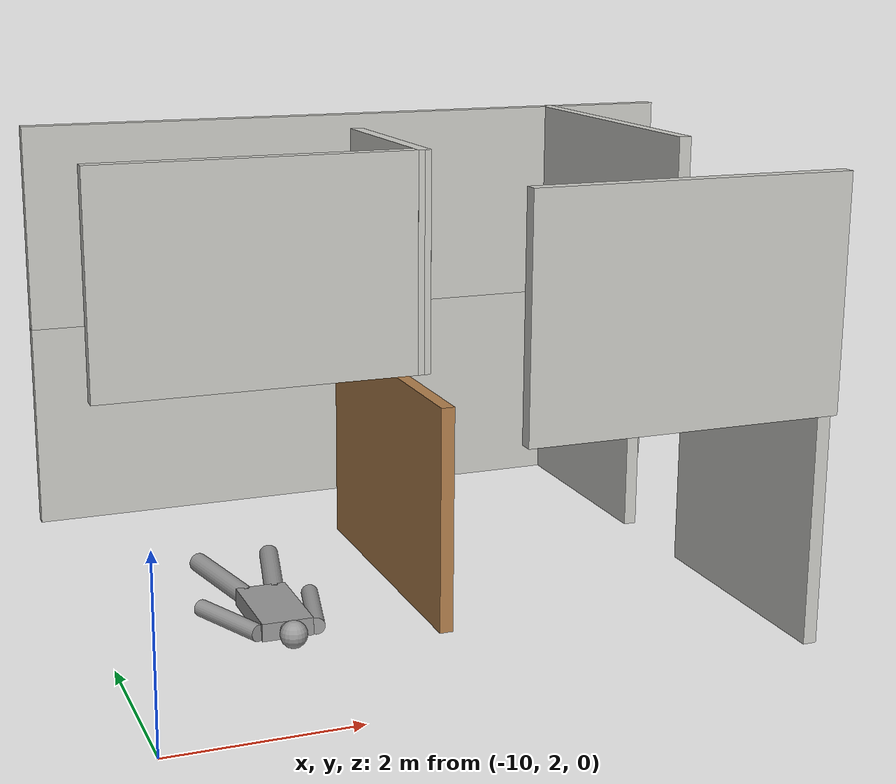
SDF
<sdf version="1.6">
 <model name="home_human">
  <link name="Wall_157">
   <pose>-8.04927 5.17259 2.5 0 -0 0</pose>
   <visual name="Wall_157_Visual">
    <pose>0 0 1.25 0 -0 0</pose>
    <geometry><box><size>3.785 0.15 2.5</size></box></geometry>
    <material>
     <script><uri>file://media/materials/scripts/gazebo.material</uri><name>Gazebo/CeilingTiled</name></script>
     <ambient>1 1 1 1</ambient>
     <shader type="pixel"/>
    </material>
    <meta><layer>1</layer></meta>
   </visual>
   <collision name="Wall_157_Collision">
    <pose>0 0 1.25 0 -0 0</pose>
    <geometry><box><size>3.785 0.15 2.5</size></box></geometry>
    <surface>
     <friction>
      <ode><mu>1</mu><mu2>1</mu2><fdir1>0 0 0</fdir1><slip1>0</slip1><slip2>0</slip2></ode>
      <torsional>
       <coefficient>1</coefficient>
       <patch_radius>0</patch_radius>
       <surface_radius>0</surface_radius>
       <use_patch_radius>1</use_patch_radius>
       <ode><slip>0</slip></ode>
      </torsional>
     </friction>
     <bounce><restitution_coefficient>0</restitution_coefficient><threshold>1e+06</threshold></bounce>
     <contact>
      <collide_without_contact>0</collide_without_contact>
      <collide_without_contact_bitmask>1</collide_without_contact_bitmask>
      <collide_bitmask>1</collide_bitmask>
      <ode>
       <soft_cfm>0</soft_cfm>
       <soft_erp>0.2</soft_erp>
       <kp>1e+13</kp>
       <kd>1</kd>
       <max_vel>0.01</max_vel>
       <min_depth>0</min_depth>
      </ode>
      <bullet>
       <split_impulse>1</split_impulse>
       <split_impulse_penetration_threshold>-0.01</split_impulse_penetration_threshold>
       <soft_cfm>0</soft_cfm>
       <soft_erp>0.2</soft_erp>
       <kp>1e+13</kp>
       <kd>1</kd>
      </bullet>
     </contact>
    </surface>
   </collision>
  </link>
  <link name="Wall_158">
   <pose>-6.24927 6.18759 2.5 0 -0 1.58804</pose>
   <visual name="Wall_158_Visual">
    <pose>0 0 1.25 0 -0 0</pose>
    <geometry><box><size>2.1803 0.15 2.5</size></box></geometry>
    <material>
     <script><uri>file://media/materials/scripts/gazebo.material</uri><name>Gazebo/CeilingTiled</name></script>
     <ambient>1 1 1 1</ambient>
     <shader type="pixel"/>
    </material>
    <meta><layer>1</layer></meta>
   </visual>
   <collision name="Wall_158_Collision">
    <pose>0 0 1.25 0 -0 0</pose>
    <geometry><box><size>2.1803 0.15 2.5</size></box></geometry>
    <surface>
     <friction>
      <ode><mu>1</mu><mu2>1</mu2><fdir1>0 0 0</fdir1><slip1>0</slip1><slip2>0</slip2></ode>
      <torsional>
       <coefficient>1</coefficient>
       <patch_radius>0</patch_radius>
       <surface_radius>0</surface_radius>
       <use_patch_radius>1</use_patch_radius>
       <ode><slip>0</slip></ode>
      </torsional>
     </friction>
     <bounce><restitution_coefficient>0</restitution_coefficient><threshold>1e+06</threshold></bounce>
     <contact>
      <collide_without_contact>0</collide_without_contact>
      <collide_without_contact_bitmask>1</collide_without_contact_bitmask>
      <collide_bitmask>1</collide_bitmask>
      <ode>
       <soft_cfm>0</soft_cfm>
       <soft_erp>0.2</soft_erp>
       <kp>1e+13</kp>
       <kd>1</kd>
       <max_vel>0.01</max_vel>
       <min_depth>0</min_depth>
      </ode>
      <bullet>
       <split_impulse>1</split_impulse>
       <split_impulse_penetration_threshold>-0.01</split_impulse_penetration_threshold>
       <soft_cfm>0</soft_cfm>
       <soft_erp>0.2</soft_erp>
       <kp>1e+13</kp>
       <kd>1</kd>
      </bullet>
     </contact>
    </surface>
   </collision>
  </link>
  <link name="Wall_160">
   <pose>-6.48077 5.50859 0 0 0 -1.5708</pose>
   <visual name="Wall_160_Visual">
    <pose>0 0 1.25 0 -0 0</pose>
    <geometry><box><size>3.5 0.15 2.5</size></box></geometry>
    <material>
     <script><uri>file://media/materials/scripts/gazebo.material</uri><name>Gazebo/Wood</name></script>
     <ambient>1 1 1 1</ambient>
     <shader type="pixel"/>
    </material>
    <meta><layer>0</layer></meta>
   </visual>
   <collision name="Wall_160_Collision">
    <pose>0 0 1.25 0 -0 0</pose>
    <geometry><box><size>3.5 0.15 2.5</size></box></geometry>
    <surface>
     <friction>
      <ode><mu>1</mu><mu2>1</mu2><fdir1>0 0 0</fdir1><slip1>0</slip1><slip2>0</slip2></ode>
      <torsional>
       <coefficient>1</coefficient>
       <patch_radius>0</patch_radius>
       <surface_radius>0</surface_radius>
       <use_patch_radius>1</use_patch_radius>
       <ode><slip>0</slip></ode>
      </torsional>
     </friction>
     <bounce><restitution_coefficient>0</restitution_coefficient><threshold>1e+06</threshold></bounce>
     <contact>
      <collide_without_contact>0</collide_without_contact>
      <collide_without_contact_bitmask>1</collide_without_contact_bitmask>
      <collide_bitmask>1</collide_bitmask>
      <ode>
       <soft_cfm>0</soft_cfm>
       <soft_erp>0.2</soft_erp>
       <kp>1e+13</kp>
       <kd>1</kd>
       <max_vel>0.01</max_vel>
       <min_depth>0</min_depth>
      </ode>
      <bullet>
       <split_impulse>1</split_impulse>
       <split_impulse_penetration_threshold>-0.01</split_impulse_penetration_threshold>
       <soft_cfm>0</soft_cfm>
       <soft_erp>0.2</soft_erp>
       <kp>1e+13</kp>
       <kd>1</kd>
      </bullet>
     </contact>
    </surface>
   </collision>
  </link>
  <link name="Wall_19">
   <pose>-5.74677 8.86009 0 0 0 -3.13884</pose>
   <visual name="Wall_19_Visual">
    <pose>0 0 1.25 0 -0 0</pose>
    <geometry><box><size>8.5 0.15 2.5</size></box></geometry>
    <material>
     <script><uri>file://media/materials/scripts/gazebo.material</uri><name>Gazebo/CeilingTiled</name></script>
     <ambient>1 1 1 1</ambient>
     <shader type="pixel"/>
    </material>
    <meta><layer>0</layer></meta>
   </visual>
   <collision name="Wall_19_Collision">
    <pose>0 0 1.25 0 -0 0</pose>
    <geometry><box><size>8.5 0.15 2.5</size></box></geometry>
    <surface>
     <friction>
      <ode><mu>1</mu><mu2>1</mu2><fdir1>0 0 0</fdir1><slip1>0</slip1><slip2>0</slip2></ode>
      <torsional>
       <coefficient>1</coefficient>
       <patch_radius>0</patch_radius>
       <surface_radius>0</surface_radius>
       <use_patch_radius>1</use_patch_radius>
       <ode><slip>0</slip></ode>
      </torsional>
     </friction>
     <bounce><restitution_coefficient>0</restitution_coefficient><threshold>1e+06</threshold></bounce>
     <contact>
      <collide_without_contact>0</collide_without_contact>
      <collide_without_contact_bitmask>1</collide_without_contact_bitmask>
      <collide_bitmask>1</collide_bitmask>
      <ode>
       <soft_cfm>0</soft_cfm>
       <soft_erp>0.2</soft_erp>
       <kp>1e+13</kp>
       <kd>1</kd>
       <max_vel>0.01</max_vel>
       <min_depth>0</min_depth>
      </ode>
      <bullet>
       <split_impulse>1</split_impulse>
       <split_impulse_penetration_threshold>-0.01</split_impulse_penetration_threshold>
       <soft_cfm>0</soft_cfm>
       <soft_erp>0.2</soft_erp>
       <kp>1e+13</kp>
       <kd>1</kd>
      </bullet>
     </contact>
    </surface>
   </collision>
  </link>
  <link name="Wall_41">
   <pose>-3.01277 7.55459 0 0 0 -1.5708</pose>
   <visual name="Wall_41_Visual">
    <pose>0 0 1.25 0 -0 0</pose>
    <geometry><box><size>2.75 0.15 2.5</size></box></geometry>
    <material>
     <script><uri>file://media/materials/scripts/gazebo.material</uri><name>Gazebo/CeilingTiled</name></script>
     <ambient>1 1 1 1</ambient>
     <shader type="pixel"/>
    </material>
    <meta><layer>0</layer></meta>
   </visual>
   <collision name="Wall_41_Collision">
    <pose>0 0 1.25 0 -0 0</pose>
    <geometry><box><size>2.75 0.15 2.5</size></box></geometry>
    <surface>
     <friction>
      <ode><mu>1</mu><mu2>1</mu2><fdir1>0 0 0</fdir1><slip1>0</slip1><slip2>0</slip2></ode>
      <torsional>
       <coefficient>1</coefficient>
       <patch_radius>0</patch_radius>
       <surface_radius>0</surface_radius>
       <use_patch_radius>1</use_patch_radius>
       <ode><slip>0</slip></ode>
      </torsional>
     </friction>
     <bounce><restitution_coefficient>0</restitution_coefficient><threshold>1e+06</threshold></bounce>
     <contact>
      <collide_without_contact>0</collide_without_contact>
      <collide_without_contact_bitmask>1</collide_without_contact_bitmask>
      <collide_bitmask>1</collide_bitmask>
      <ode>
       <soft_cfm>0</soft_cfm>
       <soft_erp>0.2</soft_erp>
       <kp>1e+13</kp>
       <kd>1</kd>
       <max_vel>0.01</max_vel>
       <min_depth>0</min_depth>
      </ode>
      <bullet>
       <split_impulse>1</split_impulse>
       <split_impulse_penetration_threshold>-0.01</split_impulse_penetration_threshold>
       <soft_cfm>0</soft_cfm>
       <soft_erp>0.2</soft_erp>
       <kp>1e+13</kp>
       <kd>1</kd>
      </bullet>
     </contact>
    </surface>
   </collision>
  </link>
  <link name="Wall_43">
   <pose>-2.99277 3.55759 0 0 -0 1.5708</pose>
   <visual name="Wall_43_Visual">
    <pose>0 0 1.25 0 -0 0</pose>
    <geometry><box><size>2.75 0.15 2.5</size></box></geometry>
    <material>
     <script><uri>file://media/materials/scripts/gazebo.material</uri><name>Gazebo/CeilingTiled</name></script>
     <ambient>1 1 1 1</ambient>
     <shader type="pixel"/>
    </material>
    <meta><layer>0</layer></meta>
   </visual>
   <collision name="Wall_43_Collision">
    <pose>0 0 1.25 0 -0 0</pose>
    <geometry><box><size>2.75 0.15 2.5</size></box></geometry>
    <surface>
     <friction>
      <ode><mu>1</mu><mu2>1</mu2><fdir1>0 0 0</fdir1><slip1>0</slip1><slip2>0</slip2></ode>
      <torsional>
       <coefficient>1</coefficient>
       <patch_radius>0</patch_radius>
       <surface_radius>0</surface_radius>
       <use_patch_radius>1</use_patch_radius>
       <ode><slip>0</slip></ode>
      </torsional>
     </friction>
     <bounce><restitution_coefficient>0</restitution_coefficient><threshold>1e+06</threshold></bounce>
     <contact>
      <collide_without_contact>0</collide_without_contact>
      <collide_without_contact_bitmask>1</collide_without_contact_bitmask>
      <collide_bitmask>1</collide_bitmask>
      <ode>
       <soft_cfm>0</soft_cfm>
       <soft_erp>0.2</soft_erp>
       <kp>1e+13</kp>
       <kd>1</kd>
       <max_vel>0.01</max_vel>
       <min_depth>0</min_depth>
      </ode>
      <bullet>
       <split_impulse>1</split_impulse>
       <split_impulse_penetration_threshold>-0.01</split_impulse_penetration_threshold>
       <soft_cfm>0</soft_cfm>
       <soft_erp>0.2</soft_erp>
       <kp>1e+13</kp>
       <kd>1</kd>
      </bullet>
     </contact>
    </surface>
   </collision>
  </link>
  <link name="Wall_61">
   <pose>-5.74677 8.86009 2.5 0 0 -3.13884</pose>
   <visual name="Wall_61_Visual">
    <pose>0 0 1.25 0 -0 0</pose>
    <geometry><box><size>8.5 0.15 2.5</size></box></geometry>
    <material>
     <script><uri>file://media/materials/scripts/gazebo.material</uri><name>Gazebo/CeilingTiled</name></script>
     <ambient>1 1 1 1</ambient>
     <shader type="pixel"/>
    </material>
    <meta><layer>1</layer></meta>
   </visual>
   <collision name="Wall_61_Collision">
    <pose>0 0 1.25 0 -0 0</pose>
    <geometry><box><size>8.5 0.15 2.5</size></box></geometry>
    <surface>
     <friction>
      <ode><mu>1</mu><mu2>1</mu2><fdir1>0 0 0</fdir1><slip1>0</slip1><slip2>0</slip2></ode>
      <torsional>
       <coefficient>1</coefficient>
       <patch_radius>0</patch_radius>
       <surface_radius>0</surface_radius>
       <use_patch_radius>1</use_patch_radius>
       <ode><slip>0</slip></ode>
      </torsional>
     </friction>
     <bounce><restitution_coefficient>0</restitution_coefficient><threshold>1e+06</threshold></bounce>
     <contact>
      <collide_without_contact>0</collide_without_contact>
      <collide_without_contact_bitmask>1</collide_without_contact_bitmask>
      <collide_bitmask>1</collide_bitmask>
      <ode>
       <soft_cfm>0</soft_cfm>
       <soft_erp>0.2</soft_erp>
       <kp>1e+13</kp>
       <kd>1</kd>
       <max_vel>0.01</max_vel>
       <min_depth>0</min_depth>
      </ode>
      <bullet>
       <split_impulse>1</split_impulse>
       <split_impulse_penetration_threshold>-0.01</split_impulse_penetration_threshold>
       <soft_cfm>0</soft_cfm>
       <soft_erp>0.2</soft_erp>
       <kp>1e+13</kp>
       <kd>1</kd>
      </bullet>
     </contact>
    </surface>
   </collision>
  </link>
  <link name="Wall_72">
   <pose>-3.01277 7.05459 2.5 0 0 -1.5708</pose>
   <visual name="Wall_72_Visual">
    <pose>0 0 1.25 0 -0 0</pose>
    <geometry><box><size>3.75 0.15 2.5</size></box></geometry>
    <material>
     <script><uri>file://media/materials/scripts/gazebo.material</uri><name>Gazebo/CeilingTiled</name></script>
     <ambient>1 1 1 1</ambient>
     <shader type="pixel"/>
    </material>
    <meta><layer>1</layer></meta>
   </visual>
   <collision name="Wall_72_Collision">
    <pose>0 0 1.25 0 -0 0</pose>
    <geometry><box><size>3.75 0.15 2.5</size></box></geometry>
    <surface>
     <friction>
      <ode><mu>1</mu><mu2>1</mu2><fdir1>0 0 0</fdir1><slip1>0</slip1><slip2>0</slip2></ode>
      <torsional>
       <coefficient>1</coefficient>
       <patch_radius>0</patch_radius>
       <surface_radius>0</surface_radius>
       <use_patch_radius>1</use_patch_radius>
       <ode><slip>0</slip></ode>
      </torsional>
     </friction>
     <bounce><restitution_coefficient>0</restitution_coefficient><threshold>1e+06</threshold></bounce>
     <contact>
      <collide_without_contact>0</collide_without_contact>
      <collide_without_contact_bitmask>1</collide_without_contact_bitmask>
      <collide_bitmask>1</collide_bitmask>
      <ode>
       <soft_cfm>0</soft_cfm>
       <soft_erp>0.2</soft_erp>
       <kp>1e+13</kp>
       <kd>1</kd>
       <max_vel>0.01</max_vel>
       <min_depth>0</min_depth>
      </ode>
      <bullet>
       <split_impulse>1</split_impulse>
       <split_impulse_penetration_threshold>-0.01</split_impulse_penetration_threshold>
       <soft_cfm>0</soft_cfm>
       <soft_erp>0.2</soft_erp>
       <kp>1e+13</kp>
       <kd>1</kd>
      </bullet>
     </contact>
    </surface>
   </collision>
  </link>
  <link name="Wall_82">
   <pose>-4.58827 2.21359 2.5 0 0 -0.001826</pose>
   <visual name="Wall_82_Visual">
    <pose>0 0 1.25 0 -0 0</pose>
    <geometry><box><size>3.43455 0.15 2.5</size></box></geometry>
    <material>
     <script><uri>file://media/materials/scripts/gazebo.material</uri><name>Gazebo/CeilingTiled</name></script>
     <ambient>1 1 1 1</ambient>
     <shader type="pixel"/>
    </material>
    <meta><layer>1</layer></meta>
   </visual>
   <collision name="Wall_82_Collision">
    <pose>0 0 1.25 0 -0 0</pose>
    <geometry><box><size>3.43455 0.15 2.5</size></box></geometry>
    <surface>
     <friction>
      <ode><mu>1</mu><mu2>1</mu2><fdir1>0 0 0</fdir1><slip1>0</slip1><slip2>0</slip2></ode>
      <torsional>
       <coefficient>1</coefficient>
       <patch_radius>0</patch_radius>
       <surface_radius>0</surface_radius>
       <use_patch_radius>1</use_patch_radius>
       <ode><slip>0</slip></ode>
      </torsional>
     </friction>
     <bounce><restitution_coefficient>0</restitution_coefficient><threshold>1e+06</threshold></bounce>
     <contact>
      <collide_without_contact>0</collide_without_contact>
      <collide_without_contact_bitmask>1</collide_without_contact_bitmask>
      <collide_bitmask>1</collide_bitmask>
      <ode>
       <soft_cfm>0</soft_cfm>
       <soft_erp>0.2</soft_erp>
       <kp>1e+13</kp>
       <kd>1</kd>
       <max_vel>0.01</max_vel>
       <min_depth>0</min_depth>
      </ode>
      <bullet>
       <split_impulse>1</split_impulse>
       <split_impulse_penetration_threshold>-0.01</split_impulse_penetration_threshold>
       <soft_cfm>0</soft_cfm>
       <soft_erp>0.2</soft_erp>
       <kp>1e+13</kp>
       <kd>1</kd>
      </bullet>
     </contact>
    </surface>
   </collision>
  </link>
  <model name="human">
   <link name="link_2">
    <inertial>
     <mass>0.00274256</mass>
     <inertia>
      <ixx>6.98489e-06</ixx>
      <ixy>0</ixy>
      <ixz>0</ixz>
      <iyy>6.98489e-06</iyy>
      <iyz>0</iyz>
      <izz>9.48338e-06</izz>
     </inertia>
    </inertial>
    <pose>0.004143 -0.698236 0.01353 1.53639 -0.014642 -0.02388</pose>
    <visual name="visual">
     <geometry><cylinder><radius>0.0831608</radius><length>0.0990711</length></cylinder></geometry>
     <material>
      <lighting>1</lighting>
      <script><uri>file://media/materials/scripts/gazebo.material</uri><name>Gazebo/Grey</name></script>
      <shader type="pixel"/>
     </material>
    </visual>
    <collision name="collision">
     <geometry><cylinder><radius>0.083161</radius><length>0.099071</length></cylinder></geometry>
     <surface>
      <friction>
       <ode><mu>1</mu><mu2>1</mu2><fdir1>0 0 0</fdir1><slip1>0</slip1><slip2>0</slip2></ode>
       <torsional>
        <coefficient>1</coefficient>
        <patch_radius>0</patch_radius>
        <surface_radius>0</surface_radius>
        <use_patch_radius>1</use_patch_radius>
        <ode><slip>0</slip></ode>
       </torsional>
      </friction>
      <bounce><restitution_coefficient>0</restitution_coefficient><threshold>1e+06</threshold></bounce>
      <contact>
       <collide_without_contact>0</collide_without_contact>
       <collide_without_contact_bitmask>1</collide_without_contact_bitmask>
       <collide_bitmask>1</collide_bitmask>
       <ode>
        <soft_cfm>0</soft_cfm>
        <soft_erp>0.2</soft_erp>
        <kp>1e+13</kp>
        <kd>1</kd>
        <max_vel>0.01</max_vel>
        <min_depth>0</min_depth>
       </ode>
       <bullet>
        <split_impulse>1</split_impulse>
        <split_impulse_penetration_threshold>-0.01</split_impulse_penetration_threshold>
        <soft_cfm>0</soft_cfm>
        <soft_erp>0.2</soft_erp>
        <kp>1e+13</kp>
        <kd>1</kd>
       </bullet>
      </contact>
     </surface>
    </collision>
   </link>
   <link name="link_3">
    <inertial>
     <mass>0.0260719</mass>
     <inertia>
      <ixx>0.000229246</ixx>
      <ixy>0</ixy>
      <ixz>0</ixz>
      <iyy>0.000229246</iyy>
      <iyz>0</iyz>
      <izz>0.000229246</izz>
     </inertia>
    </inertial>
    <pose>0.008435 -0.870567 0.038148 0 -0 0</pose>
    <visual name="visual">
     <geometry><sphere><radius>0.148263</radius></sphere></geometry>
     <material>
      <lighting>1</lighting>
      <script><uri>file://media/materials/scripts/gazebo.material</uri><name>Gazebo/Grey</name></script>
      <shader type="pixel"/>
     </material>
    </visual>
    <collision name="collision">
     <geometry><sphere><radius>0.148263</radius></sphere></geometry>
     <surface>
      <friction>
       <ode><mu>1</mu><mu2>1</mu2><fdir1>0 0 0</fdir1><slip1>0</slip1><slip2>0</slip2></ode>
       <torsional>
        <coefficient>1</coefficient>
        <patch_radius>0</patch_radius>
        <surface_radius>0</surface_radius>
        <use_patch_radius>1</use_patch_radius>
        <ode><slip>0</slip></ode>
       </torsional>
      </friction>
      <bounce><restitution_coefficient>0</restitution_coefficient><threshold>1e+06</threshold></bounce>
      <contact>
       <collide_without_contact>0</collide_without_contact>
       <collide_without_contact_bitmask>1</collide_without_contact_bitmask>
       <collide_bitmask>1</collide_bitmask>
       <ode>
        <soft_cfm>0</soft_cfm>
        <soft_erp>0.2</soft_erp>
        <kp>1e+13</kp>
        <kd>1</kd>
        <max_vel>0.01</max_vel>
        <min_depth>0</min_depth>
       </ode>
       <bullet>
        <split_impulse>1</split_impulse>
        <split_impulse_penetration_threshold>-0.01</split_impulse_penetration_threshold>
        <soft_cfm>0</soft_cfm>
        <soft_erp>0.2</soft_erp>
        <kp>1e+13</kp>
        <kd>1</kd>
       </bullet>
      </contact>
     </surface>
    </collision>
   </link>
   <link name="link_4">
    <inertial>
     <mass>0.0350676</mass>
     <inertia>
      <ixx>0.00299916</ixx>
      <ixy>0</ixy>
      <ixz>0</ixz>
      <iyy>0.00299916</iyy>
      <iyz>0</iyz>
      <izz>0.00015373</izz>
     </inertia>
    </inertial>
    <pose>0.43753 -0.16616 -0.011266 1.55407 0.003979 -0.226833</pose>
    <visual name="visual">
     <geometry><cylinder><radius>0.0936358</radius><length>1</length></cylinder></geometry>
     <material>
      <lighting>1</lighting>
      <script><uri>file://media/materials/scripts/gazebo.material</uri><name>Gazebo/Grey</name></script>
      <shader type="pixel"/>
     </material>
    </visual>
    <collision name="collision">
     <geometry><cylinder><radius>0.093636</radius><length>1</length></cylinder></geometry>
     <surface>
      <friction>
       <ode><mu>1</mu><mu2>1</mu2><fdir1>0 0 0</fdir1><slip1>0</slip1><slip2>0</slip2></ode>
       <torsional>
        <coefficient>1</coefficient>
        <patch_radius>0</patch_radius>
        <surface_radius>0</surface_radius>
        <use_patch_radius>1</use_patch_radius>
        <ode><slip>0</slip></ode>
       </torsional>
      </friction>
      <bounce><restitution_coefficient>0</restitution_coefficient><threshold>1e+06</threshold></bounce>
      <contact>
       <collide_without_contact>0</collide_without_contact>
       <collide_without_contact_bitmask>1</collide_without_contact_bitmask>
       <collide_bitmask>1</collide_bitmask>
       <ode>
        <soft_cfm>0</soft_cfm>
        <soft_erp>0.2</soft_erp>
        <kp>1e+13</kp>
        <kd>1</kd>
        <max_vel>0.01</max_vel>
        <min_depth>0</min_depth>
       </ode>
       <bullet>
        <split_impulse>1</split_impulse>
        <split_impulse_penetration_threshold>-0.01</split_impulse_penetration_threshold>
        <soft_cfm>0</soft_cfm>
        <soft_erp>0.2</soft_erp>
        <kp>1e+13</kp>
        <kd>1</kd>
       </bullet>
      </contact>
     </surface>
    </collision>
   </link>
   <link name="link_4_clone">
    <inertial>
     <mass>0.0350676</mass>
     <inertia>
      <ixx>0.00299916</ixx>
      <ixy>0</ixy>
      <ixz>0</ixz>
      <iyy>0.00299916</iyy>
      <iyz>0</iyz>
      <izz>0.00015373</izz>
     </inertia>
    </inertial>
    <pose>-0.497497 -0.16131 -0.011266 1.55968 0.013118 0.407511</pose>
    <visual name="visual">
     <geometry><cylinder><radius>0.0936358</radius><length>1</length></cylinder></geometry>
     <material>
      <lighting>1</lighting>
      <script><uri>file://media/materials/scripts/gazebo.material</uri><name>Gazebo/Grey</name></script>
      <shader type="pixel"/>
     </material>
    </visual>
    <collision name="collision">
     <geometry><cylinder><radius>0.093636</radius><length>1</length></cylinder></geometry>
     <surface>
      <friction>
       <ode><mu>1</mu><mu2>1</mu2><fdir1>0 0 0</fdir1><slip1>0</slip1><slip2>0</slip2></ode>
       <torsional>
        <coefficient>1</coefficient>
        <patch_radius>0</patch_radius>
        <surface_radius>0</surface_radius>
        <use_patch_radius>1</use_patch_radius>
        <ode><slip>0</slip></ode>
       </torsional>
      </friction>
      <bounce><restitution_coefficient>0</restitution_coefficient><threshold>1e+06</threshold></bounce>
      <contact>
       <collide_without_contact>0</collide_without_contact>
       <collide_without_contact_bitmask>1</collide_without_contact_bitmask>
       <collide_bitmask>1</collide_bitmask>
       <ode>
        <soft_cfm>0</soft_cfm>
        <soft_erp>0.2</soft_erp>
        <kp>1e+13</kp>
        <kd>1</kd>
        <max_vel>0.01</max_vel>
        <min_depth>0</min_depth>
       </ode>
       <bullet>
        <split_impulse>1</split_impulse>
        <split_impulse_penetration_threshold>-0.01</split_impulse_penetration_threshold>
        <soft_cfm>0</soft_cfm>
        <soft_erp>0.2</soft_erp>
        <kp>1e+13</kp>
        <kd>1</kd>
       </bullet>
      </contact>
     </surface>
    </collision>
   </link>
   <link name="link_4_clone_0">
    <inertial>
     <mass>0.0637493</mass>
     <inertia>
      <ixx>0.00926023</ixx>
      <ixy>0</ixy>
      <ixz>0</ixz>
      <iyy>0.00926023</iyy>
      <iyz>0</iyz>
      <izz>0.000389063</izz>
     </inertia>
    </inertial>
    <pose>0.310843 1.01076 -0.011266 1.55948 0.003979 -0.226833</pose>
    <visual name="visual">
     <geometry><cylinder><radius>0.110481</radius><length>1.30633</length></cylinder></geometry>
     <material>
      <lighting>1</lighting>
      <script><uri>file://media/materials/scripts/gazebo.material</uri><name>Gazebo/Grey</name></script>
      <shader type="pixel"/>
     </material>
    </visual>
    <collision name="collision">
     <geometry><cylinder><radius>0.110481</radius><length>1.30633</length></cylinder></geometry>
     <surface>
      <friction>
       <ode><mu>1</mu><mu2>1</mu2><fdir1>0 0 0</fdir1><slip1>0</slip1><slip2>0</slip2></ode>
       <torsional>
        <coefficient>1</coefficient>
        <patch_radius>0</patch_radius>
        <surface_radius>0</surface_radius>
        <use_patch_radius>1</use_patch_radius>
        <ode><slip>0</slip></ode>
       </torsional>
      </friction>
      <bounce><restitution_coefficient>0</restitution_coefficient><threshold>1e+06</threshold></bounce>
      <contact>
       <collide_without_contact>0</collide_without_contact>
       <collide_without_contact_bitmask>1</collide_without_contact_bitmask>
       <collide_bitmask>1</collide_bitmask>
       <ode>
        <soft_cfm>0</soft_cfm>
        <soft_erp>0.2</soft_erp>
        <kp>1e+13</kp>
        <kd>1</kd>
        <max_vel>0.01</max_vel>
        <min_depth>0</min_depth>
       </ode>
       <bullet>
        <split_impulse>1</split_impulse>
        <split_impulse_penetration_threshold>-0.01</split_impulse_penetration_threshold>
        <soft_cfm>0</soft_cfm>
        <soft_erp>0.2</soft_erp>
        <kp>1e+13</kp>
        <kd>1</kd>
       </bullet>
      </contact>
     </surface>
    </collision>
   </link>
   <link name="link_4_clone_0_clone">
    <inertial>
     <mass>0.0637493</mass>
     <inertia>
      <ixx>0.00926023</ixx>
      <ixy>0</ixy>
      <ixz>0</ixz>
      <iyy>0.00926023</iyy>
      <iyz>0</iyz>
      <izz>0.000389063</izz>
     </inertia>
    </inertial>
    <pose>-0.268402 1.01817 -0.011266 1.56033 0.010391 0.188569</pose>
    <visual name="visual">
     <geometry><cylinder><radius>0.110481</radius><length>1.30633</length></cylinder></geometry>
     <material>
      <lighting>1</lighting>
      <script><uri>file://media/materials/scripts/gazebo.material</uri><name>Gazebo/Grey</name></script>
      <shader type="pixel"/>
     </material>
    </visual>
    <collision name="collision">
     <geometry><cylinder><radius>0.110481</radius><length>1.30633</length></cylinder></geometry>
     <surface>
      <friction>
       <ode><mu>1</mu><mu2>1</mu2><fdir1>0 0 0</fdir1><slip1>0</slip1><slip2>0</slip2></ode>
       <torsional>
        <coefficient>1</coefficient>
        <patch_radius>0</patch_radius>
        <surface_radius>0</surface_radius>
        <use_patch_radius>1</use_patch_radius>
        <ode><slip>0</slip></ode>
       </torsional>
      </friction>
      <bounce><restitution_coefficient>0</restitution_coefficient><threshold>1e+06</threshold></bounce>
      <contact>
       <collide_without_contact>0</collide_without_contact>
       <collide_without_contact_bitmask>1</collide_without_contact_bitmask>
       <collide_bitmask>1</collide_bitmask>
       <ode>
        <soft_cfm>0</soft_cfm>
        <soft_erp>0.2</soft_erp>
        <kp>1e+13</kp>
        <kd>1</kd>
        <max_vel>0.01</max_vel>
        <min_depth>0</min_depth>
       </ode>
       <bullet>
        <split_impulse>1</split_impulse>
        <split_impulse_penetration_threshold>-0.01</split_impulse_penetration_threshold>
        <soft_cfm>0</soft_cfm>
        <soft_erp>0.2</soft_erp>
        <kp>1e+13</kp>
        <kd>1</kd>
       </bullet>
      </contact>
     </surface>
    </collision>
   </link>
   <link name="link_6">
    <inertial>
     <mass>0.119494</mass>
     <inertia>
      <ixx>0.0119192</ixx>
      <ixy>0</ixy>
      <ixz>0</ixz>
      <iyy>0.00354679</iyy>
      <iyz>0</iyz>
      <izz>0.0146928</izz>
     </inertia>
    </inertial>
    <pose>0.010942 -0.116021 0.002669 0 -0 0</pose>
    <visual name="visual">
     <geometry><box><size>0.563349 1.07617 0.197027</size></box></geometry>
     <material>
      <lighting>1</lighting>
      <script><uri>file://media/materials/scripts/gazebo.material</uri><name>Gazebo/Grey</name></script>
      <shader type="pixel"><normal_map>__default__</normal_map></shader>
     </material>
    </visual>
    <collision name="collision">
     <geometry><box><size>0.563349 1.07617 0.197027</size></box></geometry>
     <surface>
      <friction>
       <ode><mu>1</mu><mu2>1</mu2><fdir1>0 0 0</fdir1><slip1>0</slip1><slip2>0</slip2></ode>
       <torsional>
        <coefficient>1</coefficient>
        <patch_radius>0</patch_radius>
        <surface_radius>0</surface_radius>
        <use_patch_radius>1</use_patch_radius>
        <ode><slip>0</slip></ode>
       </torsional>
      </friction>
      <bounce><restitution_coefficient>0</restitution_coefficient><threshold>1e+06</threshold></bounce>
      <contact>
       <collide_without_contact>0</collide_without_contact>
       <collide_without_contact_bitmask>1</collide_without_contact_bitmask>
       <collide_bitmask>1</collide_bitmask>
       <ode>
        <soft_cfm>0</soft_cfm>
        <soft_erp>0.2</soft_erp>
        <kp>1e+13</kp>
        <kd>1</kd>
        <max_vel>0.01</max_vel>
        <min_depth>0</min_depth>
       </ode>
       <bullet>
        <split_impulse>1</split_impulse>
        <split_impulse_penetration_threshold>-0.01</split_impulse_penetration_threshold>
        <soft_cfm>0</soft_cfm>
        <soft_erp>0.2</soft_erp>
        <kp>1e+13</kp>
        <kd>1</kd>
       </bullet>
      </contact>
     </surface>
    </collision>
   </link>
   <static>0</static>
   <pose>-8.14442 4.7778 0.126094 0 -0 0</pose>
  </model>
  <model name="human_2">
   <link name="link_2">
    <inertial>
     <mass>0.00274256</mass>
     <inertia>
      <ixx>6.98489e-06</ixx>
      <ixy>0</ixy>
      <ixz>0</ixz>
      <iyy>6.98489e-06</iyy>
      <iyz>0</iyz>
      <izz>9.48338e-06</izz>
     </inertia>
    </inertial>
    <pose>0.004143 -0.698236 0.01353 1.53639 -0.014642 -0.02388</pose>
    <visual name="visual">
     <geometry><cylinder><radius>0.0831608</radius><length>0.0990711</length></cylinder></geometry>
     <material>
      <lighting>1</lighting>
      <script><uri>file://media/materials/scripts/gazebo.material</uri><name>Gazebo/Grey</name></script>
      <shader type="pixel"/>
     </material>
    </visual>
    <collision name="collision">
     <geometry><cylinder><radius>0.083161</radius><length>0.099071</length></cylinder></geometry>
     <surface>
      <friction>
       <ode><mu>1</mu><mu2>1</mu2><fdir1>0 0 0</fdir1><slip1>0</slip1><slip2>0</slip2></ode>
       <torsional>
        <coefficient>1</coefficient>
        <patch_radius>0</patch_radius>
        <surface_radius>0</surface_radius>
        <use_patch_radius>1</use_patch_radius>
        <ode><slip>0</slip></ode>
       </torsional>
      </friction>
      <bounce><restitution_coefficient>0</restitution_coefficient><threshold>1e+06</threshold></bounce>
      <contact>
       <collide_without_contact>0</collide_without_contact>
       <collide_without_contact_bitmask>1</collide_without_contact_bitmask>
       <collide_bitmask>1</collide_bitmask>
       <ode>
        <soft_cfm>0</soft_cfm>
        <soft_erp>0.2</soft_erp>
        <kp>1e+13</kp>
        <kd>1</kd>
        <max_vel>0.01</max_vel>
        <min_depth>0</min_depth>
       </ode>
       <bullet>
        <split_impulse>1</split_impulse>
        <split_impulse_penetration_threshold>-0.01</split_impulse_penetration_threshold>
        <soft_cfm>0</soft_cfm>
        <soft_erp>0.2</soft_erp>
        <kp>1e+13</kp>
        <kd>1</kd>
       </bullet>
      </contact>
     </surface>
    </collision>
   </link>
   <link name="link_3">
    <inertial>
     <mass>0.0260719</mass>
     <inertia>
      <ixx>0.000229246</ixx>
      <ixy>0</ixy>
      <ixz>0</ixz>
      <iyy>0.000229246</iyy>
      <iyz>0</iyz>
      <izz>0.000229246</izz>
     </inertia>
    </inertial>
    <pose>0.008435 -0.870567 0.038148 0 -0 0</pose>
    <visual name="visual">
     <geometry><sphere><radius>0.148263</radius></sphere></geometry>
     <material>
      <lighting>1</lighting>
      <script><uri>file://media/materials/scripts/gazebo.material</uri><name>Gazebo/Grey</name></script>
      <shader type="pixel"/>
     </material>
    </visual>
    <collision name="collision">
     <geometry><sphere><radius>0.148263</radius></sphere></geometry>
     <surface>
      <friction>
       <ode><mu>1</mu><mu2>1</mu2><fdir1>0 0 0</fdir1><slip1>0</slip1><slip2>0</slip2></ode>
       <torsional>
        <coefficient>1</coefficient>
        <patch_radius>0</patch_radius>
        <surface_radius>0</surface_radius>
        <use_patch_radius>1</use_patch_radius>
        <ode><slip>0</slip></ode>
       </torsional>
      </friction>
      <bounce><restitution_coefficient>0</restitution_coefficient><threshold>1e+06</threshold></bounce>
      <contact>
       <collide_without_contact>0</collide_without_contact>
       <collide_without_contact_bitmask>1</collide_without_contact_bitmask>
       <collide_bitmask>1</collide_bitmask>
       <ode>
        <soft_cfm>0</soft_cfm>
        <soft_erp>0.2</soft_erp>
        <kp>1e+13</kp>
        <kd>1</kd>
        <max_vel>0.01</max_vel>
        <min_depth>0</min_depth>
       </ode>
       <bullet>
        <split_impulse>1</split_impulse>
        <split_impulse_penetration_threshold>-0.01</split_impulse_penetration_threshold>
        <soft_cfm>0</soft_cfm>
        <soft_erp>0.2</soft_erp>
        <kp>1e+13</kp>
        <kd>1</kd>
       </bullet>
      </contact>
     </surface>
    </collision>
   </link>
   <link name="link_4">
    <inertial>
     <mass>0.0350676</mass>
     <inertia>
      <ixx>0.00299916</ixx>
      <ixy>0</ixy>
      <ixz>0</ixz>
      <iyy>0.00299916</iyy>
      <iyz>0</iyz>
      <izz>0.00015373</izz>
     </inertia>
    </inertial>
    <pose>0.43753 -0.16616 -0.011266 1.55407 0.003979 -0.226833</pose>
    <visual name="visual">
     <geometry><cylinder><radius>0.0936358</radius><length>1</length></cylinder></geometry>
     <material>
      <lighting>1</lighting>
      <script><uri>file://media/materials/scripts/gazebo.material</uri><name>Gazebo/Grey</name></script>
      <shader type="pixel"/>
     </material>
    </visual>
    <collision name="collision">
     <geometry><cylinder><radius>0.093636</radius><length>1</length></cylinder></geometry>
     <surface>
      <friction>
       <ode><mu>1</mu><mu2>1</mu2><fdir1>0 0 0</fdir1><slip1>0</slip1><slip2>0</slip2></ode>
       <torsional>
        <coefficient>1</coefficient>
        <patch_radius>0</patch_radius>
        <surface_radius>0</surface_radius>
        <use_patch_radius>1</use_patch_radius>
        <ode><slip>0</slip></ode>
       </torsional>
      </friction>
      <bounce><restitution_coefficient>0</restitution_coefficient><threshold>1e+06</threshold></bounce>
      <contact>
       <collide_without_contact>0</collide_without_contact>
       <collide_without_contact_bitmask>1</collide_without_contact_bitmask>
       <collide_bitmask>1</collide_bitmask>
       <ode>
        <soft_cfm>0</soft_cfm>
        <soft_erp>0.2</soft_erp>
        <kp>1e+13</kp>
        <kd>1</kd>
        <max_vel>0.01</max_vel>
        <min_depth>0</min_depth>
       </ode>
       <bullet>
        <split_impulse>1</split_impulse>
        <split_impulse_penetration_threshold>-0.01</split_impulse_penetration_threshold>
        <soft_cfm>0</soft_cfm>
        <soft_erp>0.2</soft_erp>
        <kp>1e+13</kp>
        <kd>1</kd>
       </bullet>
      </contact>
     </surface>
    </collision>
   </link>
   <link name="link_4_clone">
    <inertial>
     <mass>0.0350676</mass>
     <inertia>
      <ixx>0.00299916</ixx>
      <ixy>0</ixy>
      <ixz>0</ixz>
      <iyy>0.00299916</iyy>
      <iyz>0</iyz>
      <izz>0.00015373</izz>
     </inertia>
    </inertial>
    <pose>-0.497497 -0.16131 -0.011266 1.55968 0.013118 0.407511</pose>
    <visual name="visual">
     <geometry><cylinder><radius>0.0936358</radius><length>1</length></cylinder></geometry>
     <material>
      <lighting>1</lighting>
      <script><uri>file://media/materials/scripts/gazebo.material</uri><name>Gazebo/Grey</name></script>
      <shader type="pixel"/>
     </material>
    </visual>
    <collision name="collision">
     <geometry><cylinder><radius>0.093636</radius><length>1</length></cylinder></geometry>
     <surface>
      <friction>
       <ode><mu>1</mu><mu2>1</mu2><fdir1>0 0 0</fdir1><slip1>0</slip1><slip2>0</slip2></ode>
       <torsional>
        <coefficient>1</coefficient>
        <patch_radius>0</patch_radius>
        <surface_radius>0</surface_radius>
        <use_patch_radius>1</use_patch_radius>
        <ode><slip>0</slip></ode>
       </torsional>
      </friction>
      <bounce><restitution_coefficient>0</restitution_coefficient><threshold>1e+06</threshold></bounce>
      <contact>
       <collide_without_contact>0</collide_without_contact>
       <collide_without_contact_bitmask>1</collide_without_contact_bitmask>
       <collide_bitmask>1</collide_bitmask>
       <ode>
        <soft_cfm>0</soft_cfm>
        <soft_erp>0.2</soft_erp>
        <kp>1e+13</kp>
        <kd>1</kd>
        <max_vel>0.01</max_vel>
        <min_depth>0</min_depth>
       </ode>
       <bullet>
        <split_impulse>1</split_impulse>
        <split_impulse_penetration_threshold>-0.01</split_impulse_penetration_threshold>
        <soft_cfm>0</soft_cfm>
        <soft_erp>0.2</soft_erp>
        <kp>1e+13</kp>
        <kd>1</kd>
       </bullet>
      </contact>
     </surface>
    </collision>
   </link>
   <link name="link_4_clone_0">
    <inertial>
     <mass>0.0637493</mass>
     <inertia>
      <ixx>0.00926023</ixx>
      <ixy>0</ixy>
      <ixz>0</ixz>
      <iyy>0.00926023</iyy>
      <iyz>0</iyz>
      <izz>0.000389063</izz>
     </inertia>
    </inertial>
    <pose>0.310843 1.01076 -0.011266 1.55948 0.003979 -0.226833</pose>
    <visual name="visual">
     <geometry><cylinder><radius>0.110481</radius><length>1.30633</length></cylinder></geometry>
     <material>
      <lighting>1</lighting>
      <script><uri>file://media/materials/scripts/gazebo.material</uri><name>Gazebo/Grey</name></script>
      <shader type="pixel"/>
     </material>
    </visual>
    <collision name="collision">
     <geometry><cylinder><radius>0.110481</radius><length>1.30633</length></cylinder></geometry>
     <surface>
      <friction>
       <ode><mu>1</mu><mu2>1</mu2><fdir1>0 0 0</fdir1><slip1>0</slip1><slip2>0</slip2></ode>
       <torsional>
        <coefficient>1</coefficient>
        <patch_radius>0</patch_radius>
        <surface_radius>0</surface_radius>
        <use_patch_radius>1</use_patch_radius>
        <ode><slip>0</slip></ode>
       </torsional>
      </friction>
      <bounce><restitution_coefficient>0</restitution_coefficient><threshold>1e+06</threshold></bounce>
      <contact>
       <collide_without_contact>0</collide_without_contact>
       <collide_without_contact_bitmask>1</collide_without_contact_bitmask>
       <collide_bitmask>1</collide_bitmask>
       <ode>
        <soft_cfm>0</soft_cfm>
        <soft_erp>0.2</soft_erp>
        <kp>1e+13</kp>
        <kd>1</kd>
        <max_vel>0.01</max_vel>
        <min_depth>0</min_depth>
       </ode>
       <bullet>
        <split_impulse>1</split_impulse>
        <split_impulse_penetration_threshold>-0.01</split_impulse_penetration_threshold>
        <soft_cfm>0</soft_cfm>
        <soft_erp>0.2</soft_erp>
        <kp>1e+13</kp>
        <kd>1</kd>
       </bullet>
      </contact>
     </surface>
    </collision>
   </link>
   <link name="link_4_clone_0_clone">
    <inertial>
     <mass>0.0637493</mass>
     <inertia>
      <ixx>0.00926023</ixx>
      <ixy>0</ixy>
      <ixz>0</ixz>
      <iyy>0.00926023</iyy>
      <iyz>0</iyz>
      <izz>0.000389063</izz>
     </inertia>
    </inertial>
    <pose>-0.268402 1.01817 -0.011266 1.56033 0.010391 0.188569</pose>
    <visual name="visual">
     <geometry><cylinder><radius>0.110481</radius><length>1.30633</length></cylinder></geometry>
     <material>
      <lighting>1</lighting>
      <script><uri>file://media/materials/scripts/gazebo.material</uri><name>Gazebo/Grey</name></script>
      <shader type="pixel"/>
     </material>
    </visual>
    <collision name="collision">
     <geometry><cylinder><radius>0.110481</radius><length>1.30633</length></cylinder></geometry>
     <surface>
      <friction>
       <ode><mu>1</mu><mu2>1</mu2><fdir1>0 0 0</fdir1><slip1>0</slip1><slip2>0</slip2></ode>
       <torsional>
        <coefficient>1</coefficient>
        <patch_radius>0</patch_radius>
        <surface_radius>0</surface_radius>
        <use_patch_radius>1</use_patch_radius>
        <ode><slip>0</slip></ode>
       </torsional>
      </friction>
      <bounce><restitution_coefficient>0</restitution_coefficient><threshold>1e+06</threshold></bounce>
      <contact>
       <collide_without_contact>0</collide_without_contact>
       <collide_without_contact_bitmask>1</collide_without_contact_bitmask>
       <collide_bitmask>1</collide_bitmask>
       <ode>
        <soft_cfm>0</soft_cfm>
        <soft_erp>0.2</soft_erp>
        <kp>1e+13</kp>
        <kd>1</kd>
        <max_vel>0.01</max_vel>
        <min_depth>0</min_depth>
       </ode>
       <bullet>
        <split_impulse>1</split_impulse>
        <split_impulse_penetration_threshold>-0.01</split_impulse_penetration_threshold>
        <soft_cfm>0</soft_cfm>
        <soft_erp>0.2</soft_erp>
        <kp>1e+13</kp>
        <kd>1</kd>
       </bullet>
      </contact>
     </surface>
    </collision>
   </link>
   <link name="link_6">
    <inertial>
     <mass>0.119494</mass>
     <inertia>
      <ixx>0.0119192</ixx>
      <ixy>0</ixy>
      <ixz>0</ixz>
      <iyy>0.00354679</iyy>
      <iyz>0</iyz>
      <izz>0.0146928</izz>
     </inertia>
    </inertial>
    <pose>0.010942 -0.116021 0.002669 0 -0 0</pose>
    <visual name="visual">
     <geometry><box><size>0.563349 1.07617 0.197027</size></box></geometry>
     <material>
      <lighting>1</lighting>
      <script><uri>file://media/materials/scripts/gazebo.material</uri><name>Gazebo/Grey</name></script>
      <shader type="pixel"><normal_map>__default__</normal_map></shader>
     </material>
    </visual>
    <collision name="collision">
     <geometry><box><size>0.563349 1.07617 0.197027</size></box></geometry>
     <surface>
      <friction>
       <ode><mu>1</mu><mu2>1</mu2><fdir1>0 0 0</fdir1><slip1>0</slip1><slip2>0</slip2></ode>
       <torsional>
        <coefficient>1</coefficient>
        <patch_radius>0</patch_radius>
        <surface_radius>0</surface_radius>
        <use_patch_radius>1</use_patch_radius>
        <ode><slip>0</slip></ode>
       </torsional>
      </friction>
      <bounce><restitution_coefficient>0</restitution_coefficient><threshold>1e+06</threshold></bounce>
      <contact>
       <collide_without_contact>0</collide_without_contact>
       <collide_without_contact_bitmask>1</collide_without_contact_bitmask>
       <collide_bitmask>1</collide_bitmask>
       <ode>
        <soft_cfm>0</soft_cfm>
        <soft_erp>0.2</soft_erp>
        <kp>1e+13</kp>
        <kd>1</kd>
        <max_vel>0.01</max_vel>
        <min_depth>0</min_depth>
       </ode>
       <bullet>
        <split_impulse>1</split_impulse>
        <split_impulse_penetration_threshold>-0.01</split_impulse_penetration_threshold>
        <soft_cfm>0</soft_cfm>
        <soft_erp>0.2</soft_erp>
        <kp>1e+13</kp>
        <kd>1</kd>
       </bullet>
      </contact>
     </surface>
    </collision>
   </link>
   <static>0</static>
   <pose>-7.6601 6.96291 2.72031 0 -0 0</pose>
  </model>
  <static>1</static>
 </model>
</sdf>
